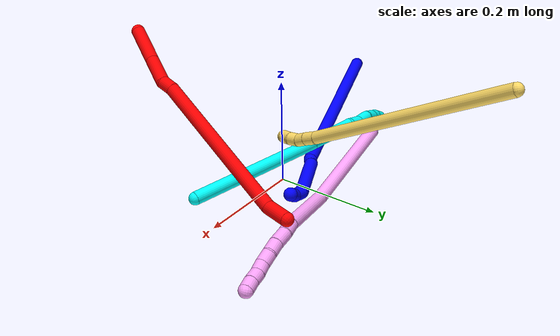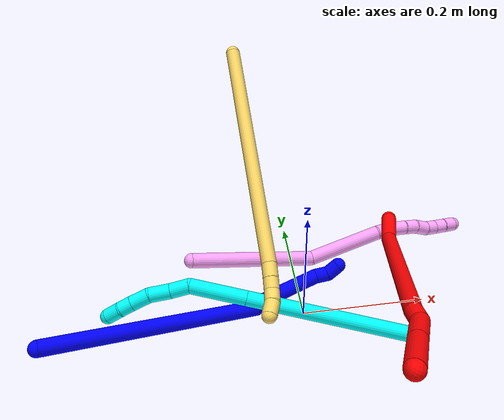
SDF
<sdf version="1.7">
 <world name="default">
  <plugin name="TubeGeneratorPlugin" filename="libtube_generator_plugin.so"/>
  <model name="photoneo_s_sensor">
   <static>1</static>
   <pose>0 0 2 1.57079 1.57079 3.14159</pose>
   <link name="link">
    <inertial><mass>0.1</mass></inertial>
    <sensor name="sensor" type="depth">
     <update_rate>30</update_rate>
     <camera>
      <horizontal_fov>1.22</horizontal_fov>
      <image><width>1920</width><height>1200</height><format>B8G8R8</format></image>
      <clip><near>0.1</near><far>4</far></clip>
      <depth_camera><output>points</output></depth_camera>
     </camera>
     <plugin name="camera_plugin" filename="libgazebo_ros_depth_camera.so">
      <baseline>0.2</baseline>
      <alwaysOn>1</alwaysOn>
      <updateRate>0.0</updateRate>
      <cameraName>camera_ir</cameraName>
      <imageTopicName>/camera/color/image_raw</imageTopicName>
      <cameraInfoTopicName>/camera/color/camera_info</cameraInfoTopicName>
      <depthImageTopicName>/camera/depth/image_raw</depthImageTopicName>
      <depthImageCameraInfoTopicName>/camera/depth/camera_info</depthImageCameraInfoTopicName>
      <pointCloudTopicName>/camera/depth/points</pointCloudTopicName>
      <frameName>fr_optical</frameName>
      <pointCloudCutoff>0.1</pointCloudCutoff>
      <pointCloudCutoffMax>2.0</pointCloudCutoffMax>
      <distortionK1>0</distortionK1>
      <distortionK2>0</distortionK2>
      <distortionK3>0</distortionK3>
      <distortionT1>0</distortionT1>
      <distortionT2>0</distortionT2>
      <CxPrime>0</CxPrime>
      <Cx>0</Cx>
      <Cy>0</Cy>
      <focalLength>0</focalLength>
      <hackBaseline>0</hackBaseline>
     </plugin>
    </sensor>
   </link>
  </model>
  <gravity>0 0 -9.8</gravity>
  <magnetic_field>6e-06 2.3e-05 -4.2e-05</magnetic_field>
  <atmosphere type="adiabatic"/>
  <physics name="default_physics" default="0" type="ode">
   <max_step_size>0.003</max_step_size>
   <real_time_factor>1</real_time_factor>
   <real_time_update_rate>1000</real_time_update_rate>
   <max_contacts>10000</max_contacts>
   <ode>
    <solver>
     <type>quick</type>
     <iters>100</iters>
     <sor>1.3</sor>
     <use_dynamic_moi_rescaling>0</use_dynamic_moi_rescaling>
    </solver>
    <constraints>
     <contact_max_correcting_vel>0</contact_max_correcting_vel>
     <contact_surface_layer>0.001</contact_surface_layer>
     <cfm>0</cfm>
     <erp>0.2</erp>
    </constraints>
   </ode>
  </physics>
  <scene><ambient>0.4 0.4 0.4 1</ambient><background>0.7 0.7 0.7 1</background><shadows>0</shadows></scene>
  <audio><device>default</device></audio>
  <spherical_coordinates>
   <surface_model>EARTH_WGS84</surface_model>
   <latitude_deg>0</latitude_deg>
   <longitude_deg>0</longitude_deg>
   <elevation>0</elevation>
   <heading_deg>0</heading_deg>
  </spherical_coordinates>
  <model name="bin">
   <static>1</static>
   <link name="bottom">
    <collision name="collision-bottom">
     <pose>0 0 -0.01 0 -0 0</pose>
     <geometry><box><size>0.8 0.6 0.02</size></box></geometry>
     <surface>
      <friction><ode><mu>100</mu><mu2>100</mu2></ode></friction>
      <contact><collide_bitmask>65535</collide_bitmask></contact>
     </surface>
    </collision>
   </link>
   <link name="west_wall">
    <collision name="collision-west_wall">
     <pose>-0.41 0 0.1 0 -0 0</pose>
     <geometry><box><size>0.02 0.6 0.2</size></box></geometry>
     <surface>
      <friction><ode><mu>100</mu><mu2>100</mu2></ode></friction>
      <contact><collide_bitmask>65535</collide_bitmask></contact>
     </surface>
    </collision>
   </link>
   <link name="east_wall">
    <collision name="collision-east_wall">
     <pose>0.41 0 0.1 0 -0 0</pose>
     <geometry><box><size>0.02 0.6 0.2</size></box></geometry>
     <surface>
      <friction><ode><mu>100</mu><mu2>100</mu2></ode></friction>
      <contact><collide_bitmask>65535</collide_bitmask></contact>
     </surface>
    </collision>
   </link>
   <link name="south_wall">
    <collision name="collision-south_wall">
     <pose>0 -0.31 0.1 0 -0 0</pose>
     <geometry><box><size>0.8 0.02 0.2</size></box></geometry>
     <surface>
      <friction><ode><mu>100</mu><mu2>100</mu2></ode></friction>
      <contact><collide_bitmask>65535</collide_bitmask></contact>
     </surface>
    </collision>
   </link>
   <link name="north_wall">
    <collision name="collision-north_wall">
     <pose>0 0.31 0.1 0 -0 0</pose>
     <geometry><box><size>0.8 0.02 0.2</size></box></geometry>
     <surface>
      <friction><ode><mu>100</mu><mu2>100</mu2></ode></friction>
      <contact><collide_bitmask>65535</collide_bitmask></contact>
     </surface>
    </collision>
   </link>
  </model>
  <model name="1">
   <static>0</static>
   <link name="1">
    <collision name="collision-cylinder-e_1_1_4">
     <pose>0.060373 0.074666 -0.136173 -2.64004 0.370773 -1.26389</pose>
     <geometry><cylinder><radius>0.0125</radius><length>0.333245</length></cylinder></geometry>
     <surface>
      <friction><ode><mu>1.16</mu><mu2>1.16</mu2><slip1>0</slip1><slip2>0</slip2></ode></friction>
      <contact><ode><kp>1e+06</kp><kd>1</kd><max_vel>0</max_vel><min_depth>0.001</min_depth></ode></contact>
     </surface>
    </collision>
    <visual name="visual-cylinder-e_1_1_4">
     <pose>0.060373 0.074666 -0.136173 -2.64004 0.370773 -1.26389</pose>
     <geometry><cylinder><radius>0.0125</radius><length>0.333245</length></cylinder></geometry>
     <material><ambient>0 0 1 1</ambient></material>
    </visual>
    <collision name="collision-cylinder-e_2_4_5">
     <pose>0.126347 0.149207 -0.281063 3.12721 0.571016 3.09261</pose>
     <geometry><cylinder><radius>0.0125</radius><length>0.020724</length></cylinder></geometry>
     <surface>
      <friction><ode><mu>1.16</mu><mu2>1.16</mu2><slip1>0</slip1><slip2>0</slip2></ode></friction>
      <contact><ode><kp>1e+06</kp><kd>1</kd><max_vel>0</max_vel><min_depth>0.001</min_depth></ode></contact>
     </surface>
    </collision>
    <visual name="visual-cylinder-e_2_4_5">
     <pose>0.126347 0.149207 -0.281063 3.12721 0.571016 3.09261</pose>
     <geometry><cylinder><radius>0.0125</radius><length>0.020724</length></cylinder></geometry>
     <material><ambient>0 0 1 1</ambient></material>
    </visual>
    <collision name="collision-cylinder-e_3_5_6">
     <pose>0.15266 0.16018 -0.334699 -2.89938 0.420902 -2.10586</pose>
     <geometry><cylinder><radius>0.0125</radius><length>0.101387</length></cylinder></geometry>
     <surface>
      <friction><ode><mu>1.16</mu><mu2>1.16</mu2><slip1>0</slip1><slip2>0</slip2></ode></friction>
      <contact><ode><kp>1e+06</kp><kd>1</kd><max_vel>0</max_vel><min_depth>0.001</min_depth></ode></contact>
     </surface>
    </collision>
    <visual name="visual-cylinder-e_3_5_6">
     <pose>0.15266 0.16018 -0.334699 -2.89938 0.420902 -2.10586</pose>
     <geometry><cylinder><radius>0.0125</radius><length>0.101387</length></cylinder></geometry>
     <material><ambient>0 0 1 1</ambient></material>
    </visual>
    <collision name="collision-cylinder-e_4_6_7">
     <pose>0.172417 0.17425 -0.390142 -2.86629 -0.087167 0.609989</pose>
     <geometry><cylinder><radius>0.0125</radius><length>0.021956</length></cylinder></geometry>
     <surface>
      <friction><ode><mu>1.16</mu><mu2>1.16</mu2><slip1>0</slip1><slip2>0</slip2></ode></friction>
      <contact><ode><kp>1e+06</kp><kd>1</kd><max_vel>0</max_vel><min_depth>0.001</min_depth></ode></contact>
     </surface>
    </collision>
    <visual name="visual-cylinder-e_4_6_7">
     <pose>0.172417 0.17425 -0.390142 -2.86629 -0.087167 0.609989</pose>
     <geometry><cylinder><radius>0.0125</radius><length>0.021956</length></cylinder></geometry>
     <material><ambient>0 0 1 1</ambient></material>
    </visual>
    <collision name="collision-cylinder-e_5_7_2">
     <pose>0.170711 0.174894 -0.411743 2.9343 -0.066253 -0.616838</pose>
     <geometry><cylinder><radius>0.0125</radius><length>0.022688</length></cylinder></geometry>
     <surface>
      <friction><ode><mu>1.16</mu><mu2>1.16</mu2><slip1>0</slip1><slip2>0</slip2></ode></friction>
      <contact><ode><kp>1e+06</kp><kd>1</kd><max_vel>0</max_vel><min_depth>0.001</min_depth></ode></contact>
     </surface>
    </collision>
    <visual name="visual-cylinder-e_5_7_2">
     <pose>0.170711 0.174894 -0.411743 2.9343 -0.066253 -0.616838</pose>
     <geometry><cylinder><radius>0.0125</radius><length>0.022688</length></cylinder></geometry>
     <material><ambient>0 0 1 1</ambient></material>
    </visual>
    <collision name="collision-sphere-2">
     <pose>0.16996 0.172564 -0.42282 0 -0 0</pose>
     <geometry><sphere><radius>0.0125</radius></sphere></geometry>
     <surface>
      <friction><ode><mu>1.16</mu><mu2>1.16</mu2><slip1>0</slip1><slip2>0</slip2></ode></friction>
      <contact><ode><kp>1e+06</kp><kd>1</kd><max_vel>0</max_vel><min_depth>0.001</min_depth></ode></contact>
     </surface>
    </collision>
    <visual name="visual-sphere-2">
     <pose>0.16996 0.172564 -0.42282 0 -0 0</pose>
     <geometry><sphere><radius>0.0125</radius></sphere></geometry>
     <material><ambient>0 0 1 1</ambient></material>
    </visual>
    <collision name="collision-sphere-7">
     <pose>0.171462 0.177223 -0.400666 0 -0 0</pose>
     <geometry><sphere><radius>0.0125</radius></sphere></geometry>
     <surface>
      <friction><ode><mu>1.16</mu><mu2>1.16</mu2><slip1>0</slip1><slip2>0</slip2></ode></friction>
      <contact><ode><kp>1e+06</kp><kd>1</kd><max_vel>0</max_vel><min_depth>0.001</min_depth></ode></contact>
     </surface>
    </collision>
    <visual name="visual-sphere-7">
     <pose>0.171462 0.177223 -0.400666 0 -0 0</pose>
     <geometry><sphere><radius>0.0125</radius></sphere></geometry>
     <material><ambient>0 0 1 1</ambient></material>
    </visual>
    <collision name="collision-sphere-6">
     <pose>0.173373 0.171277 -0.379617 0 -0 0</pose>
     <geometry><sphere><radius>0.0125</radius></sphere></geometry>
     <surface>
      <friction><ode><mu>1.16</mu><mu2>1.16</mu2><slip1>0</slip1><slip2>0</slip2></ode></friction>
      <contact><ode><kp>1e+06</kp><kd>1</kd><max_vel>0</max_vel><min_depth>0.001</min_depth></ode></contact>
     </surface>
    </collision>
    <visual name="visual-sphere-6">
     <pose>0.173373 0.171277 -0.379617 0 -0 0</pose>
     <geometry><sphere><radius>0.0125</radius></sphere></geometry>
     <material><ambient>0 0 1 1</ambient></material>
    </visual>
    <collision name="collision-sphere-5">
     <pose>0.131948 0.149082 -0.28978 0 -0 0</pose>
     <geometry><sphere><radius>0.0125</radius></sphere></geometry>
     <surface>
      <friction><ode><mu>1.16</mu><mu2>1.16</mu2><slip1>0</slip1><slip2>0</slip2></ode></friction>
      <contact><ode><kp>1e+06</kp><kd>1</kd><max_vel>0</max_vel><min_depth>0.001</min_depth></ode></contact>
     </surface>
    </collision>
    <visual name="visual-sphere-5">
     <pose>0.131948 0.149082 -0.28978 0 -0 0</pose>
     <geometry><sphere><radius>0.0125</radius></sphere></geometry>
     <material><ambient>0 0 1 1</ambient></material>
    </visual>
    <collision name="collision-sphere-1">
     <geometry><sphere><radius>0.0125</radius></sphere></geometry>
     <surface>
      <friction><ode><mu>1.16</mu><mu2>1.16</mu2><slip1>0</slip1><slip2>0</slip2></ode></friction>
      <contact><ode><kp>1e+06</kp><kd>1</kd><max_vel>0</max_vel><min_depth>0.001</min_depth></ode></contact>
     </surface>
    </collision>
    <visual name="visual-sphere-1">
     <geometry><sphere><radius>0.0125</radius></sphere></geometry>
     <material><ambient>0 0 1 1</ambient></material>
    </visual>
    <collision name="collision-sphere-4">
     <pose>0.120747 0.149332 -0.272346 0 -0 0</pose>
     <geometry><sphere><radius>0.0125</radius></sphere></geometry>
     <surface>
      <friction><ode><mu>1.16</mu><mu2>1.16</mu2><slip1>0</slip1><slip2>0</slip2></ode></friction>
      <contact><ode><kp>1e+06</kp><kd>1</kd><max_vel>0</max_vel><min_depth>0.001</min_depth></ode></contact>
     </surface>
    </collision>
    <visual name="visual-sphere-4">
     <pose>0.120747 0.149332 -0.272346 0 -0 0</pose>
     <geometry><sphere><radius>0.0125</radius></sphere></geometry>
     <material><ambient>0 0 1 1</ambient></material>
    </visual>
    <inertial>
     <pose>0.091748 0.104016 -0.206091 0 -0 0</pose>
     <mass>0.5</mass>
     <inertia>
      <ixx>-0.001978</ixx>
      <ixy>0</ixy>
      <ixz>0</ixz>
      <iyy>-0.003064</iyy>
      <iyz>0</iyz>
      <izz>-0.002601</izz>
     </inertia>
    </inertial>
   </link>
   <pose>-0.388503 -0.077881 0.084045 -2.01395 0.477632 1.54066</pose>
  </model>
  <model name="2">
   <static>0</static>
   <link name="2">
    <collision name="collision-cylinder-e_1_1_4">
     <pose>0.008078 0.023969 0.001861 -1.4933 0.324168 -0.300347</pose>
     <geometry><cylinder><radius>0.0125</radius><length>0.050723</length></cylinder></geometry>
     <surface>
      <friction><ode><mu>1.16</mu><mu2>1.16</mu2><slip1>0</slip1><slip2>0</slip2></ode></friction>
      <contact><ode><kp>1e+06</kp><kd>1</kd><max_vel>0</max_vel><min_depth>0.001</min_depth></ode></contact>
     </surface>
    </collision>
    <visual name="visual-cylinder-e_1_1_4">
     <pose>0.008078 0.023969 0.001861 -1.4933 0.324168 -0.300347</pose>
     <geometry><cylinder><radius>0.0125</radius><length>0.050723</length></cylinder></geometry>
     <material><ambient>1 0 0 1</ambient></material>
    </visual>
    <collision name="collision-cylinder-e_2_4_5">
     <pose>-0.00037 0.189446 0.041652 -1.30892 -0.112334 0.086227</pose>
     <geometry><cylinder><radius>0.0125</radius><length>0.294865</length></cylinder></geometry>
     <surface>
      <friction><ode><mu>1.16</mu><mu2>1.16</mu2><slip1>0</slip1><slip2>0</slip2></ode></friction>
      <contact><ode><kp>1e+06</kp><kd>1</kd><max_vel>0</max_vel><min_depth>0.001</min_depth></ode></contact>
     </surface>
    </collision>
    <visual name="visual-cylinder-e_2_4_5">
     <pose>-0.00037 0.189446 0.041652 -1.30892 -0.112334 0.086227</pose>
     <geometry><cylinder><radius>0.0125</radius><length>0.294865</length></cylinder></geometry>
     <material><ambient>1 0 0 1</ambient></material>
    </visual>
    <collision name="collision-cylinder-e_3_5_6">
     <pose>-0.018382 0.343144 0.080181 -1.52163 -0.121049 0.115253</pose>
     <geometry><cylinder><radius>0.0125</radius><length>0.024588</length></cylinder></geometry>
     <surface>
      <friction><ode><mu>1.16</mu><mu2>1.16</mu2><slip1>0</slip1><slip2>0</slip2></ode></friction>
      <contact><ode><kp>1e+06</kp><kd>1</kd><max_vel>0</max_vel><min_depth>0.001</min_depth></ode></contact>
     </surface>
    </collision>
    <visual name="visual-cylinder-e_3_5_6">
     <pose>-0.018382 0.343144 0.080181 -1.52163 -0.121049 0.115253</pose>
     <geometry><cylinder><radius>0.0125</radius><length>0.024588</length></cylinder></geometry>
     <material><ambient>1 0 0 1</ambient></material>
    </visual>
    <collision name="collision-cylinder-e_4_6_7">
     <pose>-0.021183 0.379879 0.092693 -1.11897 -0.048198 0.030187</pose>
     <geometry><cylinder><radius>0.0125</radius><length>0.054632</length></cylinder></geometry>
     <surface>
      <friction><ode><mu>1.16</mu><mu2>1.16</mu2><slip1>0</slip1><slip2>0</slip2></ode></friction>
      <contact><ode><kp>1e+06</kp><kd>1</kd><max_vel>0</max_vel><min_depth>0.001</min_depth></ode></contact>
     </surface>
    </collision>
    <visual name="visual-cylinder-e_4_6_7">
     <pose>-0.021183 0.379879 0.092693 -1.11897 -0.048198 0.030187</pose>
     <geometry><cylinder><radius>0.0125</radius><length>0.054632</length></cylinder></geometry>
     <material><ambient>1 0 0 1</ambient></material>
    </visual>
    <collision name="collision-cylinder-e_5_7_2">
     <pose>-0.024762 0.438153 0.12106 -1.1169 -0.060228 0.037637</pose>
     <geometry><cylinder><radius>0.0125</radius><length>0.075191</length></cylinder></geometry>
     <surface>
      <friction><ode><mu>1.16</mu><mu2>1.16</mu2><slip1>0</slip1><slip2>0</slip2></ode></friction>
      <contact><ode><kp>1e+06</kp><kd>1</kd><max_vel>0</max_vel><min_depth>0.001</min_depth></ode></contact>
     </surface>
    </collision>
    <visual name="visual-cylinder-e_5_7_2">
     <pose>-0.024762 0.438153 0.12106 -1.1169 -0.060228 0.037637</pose>
     <geometry><cylinder><radius>0.0125</radius><length>0.075191</length></cylinder></geometry>
     <material><ambient>1 0 0 1</ambient></material>
    </visual>
    <collision name="collision-sphere-2">
     <pose>-0.027024 0.471881 0.137515 0 -0 0</pose>
     <geometry><sphere><radius>0.0125</radius></sphere></geometry>
     <surface>
      <friction><ode><mu>1.16</mu><mu2>1.16</mu2><slip1>0</slip1><slip2>0</slip2></ode></friction>
      <contact><ode><kp>1e+06</kp><kd>1</kd><max_vel>0</max_vel><min_depth>0.001</min_depth></ode></contact>
     </surface>
    </collision>
    <visual name="visual-sphere-2">
     <pose>-0.027024 0.471881 0.137515 0 -0 0</pose>
     <geometry><sphere><radius>0.0125</radius></sphere></geometry>
     <material><ambient>1 0 0 1</ambient></material>
    </visual>
    <collision name="collision-sphere-7">
     <pose>-0.022499 0.404426 0.104605 0 -0 0</pose>
     <geometry><sphere><radius>0.0125</radius></sphere></geometry>
     <surface>
      <friction><ode><mu>1.16</mu><mu2>1.16</mu2><slip1>0</slip1><slip2>0</slip2></ode></friction>
      <contact><ode><kp>1e+06</kp><kd>1</kd><max_vel>0</max_vel><min_depth>0.001</min_depth></ode></contact>
     </surface>
    </collision>
    <visual name="visual-sphere-7">
     <pose>-0.022499 0.404426 0.104605 0 -0 0</pose>
     <geometry><sphere><radius>0.0125</radius></sphere></geometry>
     <material><ambient>1 0 0 1</ambient></material>
    </visual>
    <collision name="collision-sphere-6">
     <pose>-0.019866 0.355333 0.08078 0 -0 0</pose>
     <geometry><sphere><radius>0.0125</radius></sphere></geometry>
     <surface>
      <friction><ode><mu>1.16</mu><mu2>1.16</mu2><slip1>0</slip1><slip2>0</slip2></ode></friction>
      <contact><ode><kp>1e+06</kp><kd>1</kd><max_vel>0</max_vel><min_depth>0.001</min_depth></ode></contact>
     </surface>
    </collision>
    <visual name="visual-sphere-6">
     <pose>-0.019866 0.355333 0.08078 0 -0 0</pose>
     <geometry><sphere><radius>0.0125</radius></sphere></geometry>
     <material><ambient>1 0 0 1</ambient></material>
    </visual>
    <collision name="collision-sphere-5">
     <pose>-0.016897 0.330954 0.079581 0 -0 0</pose>
     <geometry><sphere><radius>0.0125</radius></sphere></geometry>
     <surface>
      <friction><ode><mu>1.16</mu><mu2>1.16</mu2><slip1>0</slip1><slip2>0</slip2></ode></friction>
      <contact><ode><kp>1e+06</kp><kd>1</kd><max_vel>0</max_vel><min_depth>0.001</min_depth></ode></contact>
     </surface>
    </collision>
    <visual name="visual-sphere-5">
     <pose>-0.016897 0.330954 0.079581 0 -0 0</pose>
     <geometry><sphere><radius>0.0125</radius></sphere></geometry>
     <material><ambient>1 0 0 1</ambient></material>
    </visual>
    <collision name="collision-sphere-1">
     <geometry><sphere><radius>0.0125</radius></sphere></geometry>
     <surface>
      <friction><ode><mu>1.16</mu><mu2>1.16</mu2><slip1>0</slip1><slip2>0</slip2></ode></friction>
      <contact><ode><kp>1e+06</kp><kd>1</kd><max_vel>0</max_vel><min_depth>0.001</min_depth></ode></contact>
     </surface>
    </collision>
    <visual name="visual-sphere-1">
     <geometry><sphere><radius>0.0125</radius></sphere></geometry>
     <material><ambient>1 0 0 1</ambient></material>
    </visual>
    <collision name="collision-sphere-4">
     <pose>0.016156 0.047937 0.003723 0 -0 0</pose>
     <geometry><sphere><radius>0.0125</radius></sphere></geometry>
     <surface>
      <friction><ode><mu>1.16</mu><mu2>1.16</mu2><slip1>0</slip1><slip2>0</slip2></ode></friction>
      <contact><ode><kp>1e+06</kp><kd>1</kd><max_vel>0</max_vel><min_depth>0.001</min_depth></ode></contact>
     </surface>
    </collision>
    <visual name="visual-sphere-4">
     <pose>0.016156 0.047937 0.003723 0 -0 0</pose>
     <geometry><sphere><radius>0.0125</radius></sphere></geometry>
     <material><ambient>1 0 0 1</ambient></material>
    </visual>
    <inertial>
     <pose>-0.006341 0.238426 0.057028 0 -0 0</pose>
     <mass>0.5</mass>
     <inertia>
      <ixx>0.002375</ixx>
      <ixy>0</ixy>
      <ixz>0</ixz>
      <iyy>0.000819</iyy>
      <iyz>0</iyz>
      <izz>-0.001874</izz>
     </inertia>
    </inertial>
   </link>
   <pose>0.178459 0.140511 0.060206 0.370838 0.978479 -2.88526</pose>
  </model>
  <model name="3">
   <static>0</static>
   <link name="3">
    <collision name="collision-cylinder-e_1_1_4">
     <pose>-0.120275 0.028045 0.048538 -0.523942 -1.13465 0.338442</pose>
     <geometry><cylinder><radius>0.0125</radius><length>0.265394</length></cylinder></geometry>
     <surface>
      <friction><ode><mu>1.16</mu><mu2>1.16</mu2><slip1>0</slip1><slip2>0</slip2></ode></friction>
      <contact><ode><kp>1e+06</kp><kd>1</kd><max_vel>0</max_vel><min_depth>0.001</min_depth></ode></contact>
     </surface>
    </collision>
    <visual name="visual-cylinder-e_1_1_4">
     <pose>-0.120275 0.028045 0.048538 -0.523942 -1.13465 0.338442</pose>
     <geometry><cylinder><radius>0.0125</radius><length>0.265394</length></cylinder></geometry>
     <material><ambient>0.003922 1 0.996078 1</ambient></material>
    </visual>
    <collision name="collision-cylinder-e_2_4_5">
     <pose>-0.282153 0.067041 0.114846 -0.552241 -1.10577 0.346211</pose>
     <geometry><cylinder><radius>0.0125</radius><length>0.093092</length></cylinder></geometry>
     <surface>
      <friction><ode><mu>1.16</mu><mu2>1.16</mu2><slip1>0</slip1><slip2>0</slip2></ode></friction>
      <contact><ode><kp>1e+06</kp><kd>1</kd><max_vel>0</max_vel><min_depth>0.001</min_depth></ode></contact>
     </surface>
    </collision>
    <visual name="visual-cylinder-e_2_4_5">
     <pose>-0.282153 0.067041 0.114846 -0.552241 -1.10577 0.346211</pose>
     <geometry><cylinder><radius>0.0125</radius><length>0.093092</length></cylinder></geometry>
     <material><ambient>0.003922 1 0.996078 1</ambient></material>
    </visual>
    <collision name="collision-cylinder-e_3_5_6">
     <pose>-0.335977 0.075724 0.142703 0.221082 -0.868649 -0.102881</pose>
     <geometry><cylinder><radius>0.0125</radius><length>0.032013</length></cylinder></geometry>
     <surface>
      <friction><ode><mu>1.16</mu><mu2>1.16</mu2><slip1>0</slip1><slip2>0</slip2></ode></friction>
      <contact><ode><kp>1e+06</kp><kd>1</kd><max_vel>0</max_vel><min_depth>0.001</min_depth></ode></contact>
     </surface>
    </collision>
    <visual name="visual-cylinder-e_3_5_6">
     <pose>-0.335977 0.075724 0.142703 0.221082 -0.868649 -0.102881</pose>
     <geometry><cylinder><radius>0.0125</radius><length>0.032013</length></cylinder></geometry>
     <material><ambient>0.003922 1 0.996078 1</ambient></material>
    </visual>
    <collision name="collision-cylinder-e_4_6_7">
     <pose>-0.360558 0.073928 0.164699 -0.039527 -0.803591 0.016797</pose>
     <geometry><cylinder><radius>0.0125</radius><length>0.034343</length></cylinder></geometry>
     <surface>
      <friction><ode><mu>1.16</mu><mu2>1.16</mu2><slip1>0</slip1><slip2>0</slip2></ode></friction>
      <contact><ode><kp>1e+06</kp><kd>1</kd><max_vel>0</max_vel><min_depth>0.001</min_depth></ode></contact>
     </surface>
    </collision>
    <visual name="visual-cylinder-e_4_6_7">
     <pose>-0.360558 0.073928 0.164699 -0.039527 -0.803591 0.016797</pose>
     <geometry><cylinder><radius>0.0125</radius><length>0.034343</length></cylinder></geometry>
     <material><ambient>0.003922 1 0.996078 1</ambient></material>
    </visual>
    <collision name="collision-cylinder-e_5_7_8">
     <pose>-0.382492 0.070594 0.187295 0.342133 -0.701004 -0.12615</pose>
     <geometry><cylinder><radius>0.0125</radius><length>0.029686</length></cylinder></geometry>
     <surface>
      <friction><ode><mu>1.16</mu><mu2>1.16</mu2><slip1>0</slip1><slip2>0</slip2></ode></friction>
      <contact><ode><kp>1e+06</kp><kd>1</kd><max_vel>0</max_vel><min_depth>0.001</min_depth></ode></contact>
     </surface>
    </collision>
    <visual name="visual-cylinder-e_5_7_8">
     <pose>-0.382492 0.070594 0.187295 0.342133 -0.701004 -0.12615</pose>
     <geometry><cylinder><radius>0.0125</radius><length>0.029686</length></cylinder></geometry>
     <material><ambient>0.003922 1 0.996078 1</ambient></material>
    </visual>
    <collision name="collision-cylinder-e_6_8_9">
     <pose>-0.398444 0.064067 0.205733 0.337548 -0.660089 -0.116614</pose>
     <geometry><cylinder><radius>0.0125</radius><length>0.020804</length></cylinder></geometry>
     <surface>
      <friction><ode><mu>1.16</mu><mu2>1.16</mu2><slip1>0</slip1><slip2>0</slip2></ode></friction>
      <contact><ode><kp>1e+06</kp><kd>1</kd><max_vel>0</max_vel><min_depth>0.001</min_depth></ode></contact>
     </surface>
    </collision>
    <visual name="visual-cylinder-e_6_8_9">
     <pose>-0.398444 0.064067 0.205733 0.337548 -0.660089 -0.116614</pose>
     <geometry><cylinder><radius>0.0125</radius><length>0.020804</length></cylinder></geometry>
     <material><ambient>0.003922 1 0.996078 1</ambient></material>
    </visual>
    <collision name="collision-cylinder-e_7_9_2">
     <pose>-0.413256 0.05621 0.220878 0.607245 -0.752891 -0.246446</pose>
     <geometry><cylinder><radius>0.0125</radius><length>0.024668</length></cylinder></geometry>
     <surface>
      <friction><ode><mu>1.16</mu><mu2>1.16</mu2><slip1>0</slip1><slip2>0</slip2></ode></friction>
      <contact><ode><kp>1e+06</kp><kd>1</kd><max_vel>0</max_vel><min_depth>0.001</min_depth></ode></contact>
     </surface>
    </collision>
    <visual name="visual-cylinder-e_7_9_2">
     <pose>-0.413256 0.05621 0.220878 0.607245 -0.752891 -0.246446</pose>
     <geometry><cylinder><radius>0.0125</radius><length>0.024668</length></cylinder></geometry>
     <material><ambient>0.003922 1 0.996078 1</ambient></material>
    </visual>
    <collision name="collision-sphere-2">
     <pose>-0.421689 0.051075 0.228269 0 -0 0</pose>
     <geometry><sphere><radius>0.0125</radius></sphere></geometry>
     <surface>
      <friction><ode><mu>1.16</mu><mu2>1.16</mu2><slip1>0</slip1><slip2>0</slip2></ode></friction>
      <contact><ode><kp>1e+06</kp><kd>1</kd><max_vel>0</max_vel><min_depth>0.001</min_depth></ode></contact>
     </surface>
    </collision>
    <visual name="visual-sphere-2">
     <pose>-0.421689 0.051075 0.228269 0 -0 0</pose>
     <geometry><sphere><radius>0.0125</radius></sphere></geometry>
     <material><ambient>0.003922 1 0.996078 1</ambient></material>
    </visual>
    <collision name="collision-sphere-9">
     <pose>-0.404823 0.061346 0.213486 0 -0 0</pose>
     <geometry><sphere><radius>0.0125</radius></sphere></geometry>
     <surface>
      <friction><ode><mu>1.16</mu><mu2>1.16</mu2><slip1>0</slip1><slip2>0</slip2></ode></friction>
      <contact><ode><kp>1e+06</kp><kd>1</kd><max_vel>0</max_vel><min_depth>0.001</min_depth></ode></contact>
     </surface>
    </collision>
    <visual name="visual-sphere-9">
     <pose>-0.404823 0.061346 0.213486 0 -0 0</pose>
     <geometry><sphere><radius>0.0125</radius></sphere></geometry>
     <material><ambient>0.003922 1 0.996078 1</ambient></material>
    </visual>
    <collision name="collision-sphere-4">
     <pose>-0.240549 0.056091 0.097075 0 -0 0</pose>
     <geometry><sphere><radius>0.0125</radius></sphere></geometry>
     <surface>
      <friction><ode><mu>1.16</mu><mu2>1.16</mu2><slip1>0</slip1><slip2>0</slip2></ode></friction>
      <contact><ode><kp>1e+06</kp><kd>1</kd><max_vel>0</max_vel><min_depth>0.001</min_depth></ode></contact>
     </surface>
    </collision>
    <visual name="visual-sphere-4">
     <pose>-0.240549 0.056091 0.097075 0 -0 0</pose>
     <geometry><sphere><radius>0.0125</radius></sphere></geometry>
     <material><ambient>0.003922 1 0.996078 1</ambient></material>
    </visual>
    <collision name="collision-sphere-1">
     <geometry><sphere><radius>0.0125</radius></sphere></geometry>
     <surface>
      <friction><ode><mu>1.16</mu><mu2>1.16</mu2><slip1>0</slip1><slip2>0</slip2></ode></friction>
      <contact><ode><kp>1e+06</kp><kd>1</kd><max_vel>0</max_vel><min_depth>0.001</min_depth></ode></contact>
     </surface>
    </collision>
    <visual name="visual-sphere-1">
     <geometry><sphere><radius>0.0125</radius></sphere></geometry>
     <material><ambient>0.003922 1 0.996078 1</ambient></material>
    </visual>
    <collision name="collision-sphere-8">
     <pose>-0.392066 0.066788 0.19798 0 -0 0</pose>
     <geometry><sphere><radius>0.0125</radius></sphere></geometry>
     <surface>
      <friction><ode><mu>1.16</mu><mu2>1.16</mu2><slip1>0</slip1><slip2>0</slip2></ode></friction>
      <contact><ode><kp>1e+06</kp><kd>1</kd><max_vel>0</max_vel><min_depth>0.001</min_depth></ode></contact>
     </surface>
    </collision>
    <visual name="visual-sphere-8">
     <pose>-0.392066 0.066788 0.19798 0 -0 0</pose>
     <geometry><sphere><radius>0.0125</radius></sphere></geometry>
     <material><ambient>0.003922 1 0.996078 1</ambient></material>
    </visual>
    <collision name="collision-sphere-5">
     <pose>-0.323756 0.077991 0.132616 0 -0 0</pose>
     <geometry><sphere><radius>0.0125</radius></sphere></geometry>
     <surface>
      <friction><ode><mu>1.16</mu><mu2>1.16</mu2><slip1>0</slip1><slip2>0</slip2></ode></friction>
      <contact><ode><kp>1e+06</kp><kd>1</kd><max_vel>0</max_vel><min_depth>0.001</min_depth></ode></contact>
     </surface>
    </collision>
    <visual name="visual-sphere-5">
     <pose>-0.323756 0.077991 0.132616 0 -0 0</pose>
     <geometry><sphere><radius>0.0125</radius></sphere></geometry>
     <material><ambient>0.003922 1 0.996078 1</ambient></material>
    </visual>
    <collision name="collision-sphere-6">
     <pose>-0.348197 0.073457 0.152789 0 -0 0</pose>
     <geometry><sphere><radius>0.0125</radius></sphere></geometry>
     <surface>
      <friction><ode><mu>1.16</mu><mu2>1.16</mu2><slip1>0</slip1><slip2>0</slip2></ode></friction>
      <contact><ode><kp>1e+06</kp><kd>1</kd><max_vel>0</max_vel><min_depth>0.001</min_depth></ode></contact>
     </surface>
    </collision>
    <visual name="visual-sphere-6">
     <pose>-0.348197 0.073457 0.152789 0 -0 0</pose>
     <geometry><sphere><radius>0.0125</radius></sphere></geometry>
     <material><ambient>0.003922 1 0.996078 1</ambient></material>
    </visual>
    <collision name="collision-sphere-7">
     <pose>-0.372919 0.074399 0.176609 0 -0 0</pose>
     <geometry><sphere><radius>0.0125</radius></sphere></geometry>
     <surface>
      <friction><ode><mu>1.16</mu><mu2>1.16</mu2><slip1>0</slip1><slip2>0</slip2></ode></friction>
      <contact><ode><kp>1e+06</kp><kd>1</kd><max_vel>0</max_vel><min_depth>0.001</min_depth></ode></contact>
     </surface>
    </collision>
    <visual name="visual-sphere-7">
     <pose>-0.372919 0.074399 0.176609 0 -0 0</pose>
     <geometry><sphere><radius>0.0125</radius></sphere></geometry>
     <material><ambient>0.003922 1 0.996078 1</ambient></material>
    </visual>
    <inertial>
     <pose>-0.222326 0.046924 0.098172 0 -0 0</pose>
     <mass>0.5</mass>
     <inertia>
      <ixx>0.000863</ixx>
      <ixy>0</ixy>
      <ixz>0</ixz>
      <iyy>0.001834</iyy>
      <iyz>0</iyz>
      <izz>0.001168</izz>
     </inertia>
    </inertial>
   </link>
   <pose>0.159025 -0.077576 0.011498 1.62958 -0.086557 -0.72268</pose>
  </model>
  <model name="4">
   <static>0</static>
   <link name="4">
    <collision name="collision-cylinder-e_1_1_4">
     <pose>0.087372 -0.021896 0.054566 0.381597 0.978469 0.204946</pose>
     <geometry><cylinder><radius>0.0125</radius><length>0.210625</length></cylinder></geometry>
     <surface>
      <friction><ode><mu>1.16</mu><mu2>1.16</mu2><slip1>0</slip1><slip2>0</slip2></ode></friction>
      <contact><ode><kp>1e+06</kp><kd>1</kd><max_vel>0</max_vel><min_depth>0.001</min_depth></ode></contact>
     </surface>
    </collision>
    <visual name="visual-cylinder-e_1_1_4">
     <pose>0.087372 -0.021896 0.054566 0.381597 0.978469 0.204946</pose>
     <geometry><cylinder><radius>0.0125</radius><length>0.210625</length></cylinder></geometry>
     <material><ambient>1 0.65098 0.996078 1</ambient></material>
    </visual>
    <collision name="collision-cylinder-e_2_4_5">
     <pose>0.227354 -0.032835 0.143831 -0.305848 0.965712 -0.161251</pose>
     <geometry><cylinder><radius>0.0125</radius><length>0.127935</length></cylinder></geometry>
     <surface>
      <friction><ode><mu>1.16</mu><mu2>1.16</mu2><slip1>0</slip1><slip2>0</slip2></ode></friction>
      <contact><ode><kp>1e+06</kp><kd>1</kd><max_vel>0</max_vel><min_depth>0.001</min_depth></ode></contact>
     </surface>
    </collision>
    <visual name="visual-cylinder-e_2_4_5">
     <pose>0.227354 -0.032835 0.143831 -0.305848 0.965712 -0.161251</pose>
     <geometry><cylinder><radius>0.0125</radius><length>0.127935</length></cylinder></geometry>
     <material><ambient>1 0.65098 0.996078 1</ambient></material>
    </visual>
    <collision name="collision-cylinder-e_3_5_6">
     <pose>0.292264 -0.021715 0.184403 -0.027928 1.12506 -0.017608</pose>
     <geometry><cylinder><radius>0.0125</radius><length>0.027262</length></cylinder></geometry>
     <surface>
      <friction><ode><mu>1.16</mu><mu2>1.16</mu2><slip1>0</slip1><slip2>0</slip2></ode></friction>
      <contact><ode><kp>1e+06</kp><kd>1</kd><max_vel>0</max_vel><min_depth>0.001</min_depth></ode></contact>
     </surface>
    </collision>
    <visual name="visual-cylinder-e_3_5_6">
     <pose>0.292264 -0.021715 0.184403 -0.027928 1.12506 -0.017608</pose>
     <geometry><cylinder><radius>0.0125</radius><length>0.027262</length></cylinder></geometry>
     <material><ambient>1 0.65098 0.996078 1</ambient></material>
    </visual>
    <collision name="collision-cylinder-e_4_6_7">
     <pose>0.31649 -0.02319 0.198077 0.207195 0.981715 0.111027</pose>
     <geometry><cylinder><radius>0.0125</radius><length>0.028689</length></cylinder></geometry>
     <surface>
      <friction><ode><mu>1.16</mu><mu2>1.16</mu2><slip1>0</slip1><slip2>0</slip2></ode></friction>
      <contact><ode><kp>1e+06</kp><kd>1</kd><max_vel>0</max_vel><min_depth>0.001</min_depth></ode></contact>
     </surface>
    </collision>
    <visual name="visual-cylinder-e_4_6_7">
     <pose>0.31649 -0.02319 0.198077 0.207195 0.981715 0.111027</pose>
     <geometry><cylinder><radius>0.0125</radius><length>0.028689</length></cylinder></geometry>
     <material><ambient>1 0.65098 0.996078 1</ambient></material>
    </visual>
    <collision name="collision-cylinder-e_5_7_8">
     <pose>0.338626 -0.026699 0.211099 0.343746 1.07309 0.20575</pose>
     <geometry><cylinder><radius>0.0125</radius><length>0.023238</length></cylinder></geometry>
     <surface>
      <friction><ode><mu>1.16</mu><mu2>1.16</mu2><slip1>0</slip1><slip2>0</slip2></ode></friction>
      <contact><ode><kp>1e+06</kp><kd>1</kd><max_vel>0</max_vel><min_depth>0.001</min_depth></ode></contact>
     </surface>
    </collision>
    <visual name="visual-cylinder-e_5_7_8">
     <pose>0.338626 -0.026699 0.211099 0.343746 1.07309 0.20575</pose>
     <geometry><cylinder><radius>0.0125</radius><length>0.023238</length></cylinder></geometry>
     <material><ambient>1 0.65098 0.996078 1</ambient></material>
    </visual>
    <collision name="collision-cylinder-e_6_8_9">
     <pose>0.357736 -0.032765 0.221339 0.696443 0.936987 0.363371</pose>
     <geometry><cylinder><radius>0.0125</radius><length>0.022093</length></cylinder></geometry>
     <surface>
      <friction><ode><mu>1.16</mu><mu2>1.16</mu2><slip1>0</slip1><slip2>0</slip2></ode></friction>
      <contact><ode><kp>1e+06</kp><kd>1</kd><max_vel>0</max_vel><min_depth>0.001</min_depth></ode></contact>
     </surface>
    </collision>
    <visual name="visual-cylinder-e_6_8_9">
     <pose>0.357736 -0.032765 0.221339 0.696443 0.936987 0.363371</pose>
     <geometry><cylinder><radius>0.0125</radius><length>0.022093</length></cylinder></geometry>
     <material><ambient>1 0.65098 0.996078 1</ambient></material>
    </visual>
    <collision name="collision-cylinder-e_7_9_10">
     <pose>0.375849 -0.038534 0.230063 0.401469 1.15888 0.264738</pose>
     <geometry><cylinder><radius>0.0125</radius><length>0.020107</length></cylinder></geometry>
     <surface>
      <friction><ode><mu>1.16</mu><mu2>1.16</mu2><slip1>0</slip1><slip2>0</slip2></ode></friction>
      <contact><ode><kp>1e+06</kp><kd>1</kd><max_vel>0</max_vel><min_depth>0.001</min_depth></ode></contact>
     </surface>
    </collision>
    <visual name="visual-cylinder-e_7_9_10">
     <pose>0.375849 -0.038534 0.230063 0.401469 1.15888 0.264738</pose>
     <geometry><cylinder><radius>0.0125</radius><length>0.020107</length></cylinder></geometry>
     <material><ambient>1 0.65098 0.996078 1</ambient></material>
    </visual>
    <collision name="collision-cylinder-e_8_10_11">
     <pose>0.393697 -0.040727 0.238796 0.122611 1.04022 0.070279</pose>
     <geometry><cylinder><radius>0.0125</radius><length>0.020024</length></cylinder></geometry>
     <surface>
      <friction><ode><mu>1.16</mu><mu2>1.16</mu2><slip1>0</slip1><slip2>0</slip2></ode></friction>
      <contact><ode><kp>1e+06</kp><kd>1</kd><max_vel>0</max_vel><min_depth>0.001</min_depth></ode></contact>
     </surface>
    </collision>
    <visual name="visual-cylinder-e_8_10_11">
     <pose>0.393697 -0.040727 0.238796 0.122611 1.04022 0.070279</pose>
     <geometry><cylinder><radius>0.0125</radius><length>0.020024</length></cylinder></geometry>
     <material><ambient>1 0.65098 0.996078 1</ambient></material>
    </visual>
    <collision name="collision-cylinder-e_9_11_2">
     <pose>0.411367 -0.042371 0.24802 0.23956 1.12487 0.151442</pose>
     <geometry><cylinder><radius>0.0125</radius><length>0.020028</length></cylinder></geometry>
     <surface>
      <friction><ode><mu>1.16</mu><mu2>1.16</mu2><slip1>0</slip1><slip2>0</slip2></ode></friction>
      <contact><ode><kp>1e+06</kp><kd>1</kd><max_vel>0</max_vel><min_depth>0.001</min_depth></ode></contact>
     </surface>
    </collision>
    <visual name="visual-cylinder-e_9_11_2">
     <pose>0.411367 -0.042371 0.24802 0.23956 1.12487 0.151442</pose>
     <geometry><cylinder><radius>0.0125</radius><length>0.020028</length></cylinder></geometry>
     <material><ambient>1 0.65098 0.996078 1</ambient></material>
    </visual>
    <collision name="collision-sphere-2">
     <pose>0.420402 -0.043396 0.252216 0 -0 0</pose>
     <geometry><sphere><radius>0.0125</radius></sphere></geometry>
     <surface>
      <friction><ode><mu>1.16</mu><mu2>1.16</mu2><slip1>0</slip1><slip2>0</slip2></ode></friction>
      <contact><ode><kp>1e+06</kp><kd>1</kd><max_vel>0</max_vel><min_depth>0.001</min_depth></ode></contact>
     </surface>
    </collision>
    <visual name="visual-sphere-2">
     <pose>0.420402 -0.043396 0.252216 0 -0 0</pose>
     <geometry><sphere><radius>0.0125</radius></sphere></geometry>
     <material><ambient>1 0.65098 0.996078 1</ambient></material>
    </visual>
    <collision name="collision-sphere-11">
     <pose>0.402333 -0.041347 0.243825 0 -0 0</pose>
     <geometry><sphere><radius>0.0125</radius></sphere></geometry>
     <surface>
      <friction><ode><mu>1.16</mu><mu2>1.16</mu2><slip1>0</slip1><slip2>0</slip2></ode></friction>
      <contact><ode><kp>1e+06</kp><kd>1</kd><max_vel>0</max_vel><min_depth>0.001</min_depth></ode></contact>
     </surface>
    </collision>
    <visual name="visual-sphere-11">
     <pose>0.402333 -0.041347 0.243825 0 -0 0</pose>
     <geometry><sphere><radius>0.0125</radius></sphere></geometry>
     <material><ambient>1 0.65098 0.996078 1</ambient></material>
    </visual>
    <collision name="collision-sphere-10">
     <pose>0.385062 -0.040107 0.233768 0 -0 0</pose>
     <geometry><sphere><radius>0.0125</radius></sphere></geometry>
     <surface>
      <friction><ode><mu>1.16</mu><mu2>1.16</mu2><slip1>0</slip1><slip2>0</slip2></ode></friction>
      <contact><ode><kp>1e+06</kp><kd>1</kd><max_vel>0</max_vel><min_depth>0.001</min_depth></ode></contact>
     </surface>
    </collision>
    <visual name="visual-sphere-10">
     <pose>0.385062 -0.040107 0.233768 0 -0 0</pose>
     <geometry><sphere><radius>0.0125</radius></sphere></geometry>
     <material><ambient>1 0.65098 0.996078 1</ambient></material>
    </visual>
    <collision name="collision-sphere-9">
     <pose>0.366637 -0.036962 0.226358 0 -0 0</pose>
     <geometry><sphere><radius>0.0125</radius></sphere></geometry>
     <surface>
      <friction><ode><mu>1.16</mu><mu2>1.16</mu2><slip1>0</slip1><slip2>0</slip2></ode></friction>
      <contact><ode><kp>1e+06</kp><kd>1</kd><max_vel>0</max_vel><min_depth>0.001</min_depth></ode></contact>
     </surface>
    </collision>
    <visual name="visual-sphere-9">
     <pose>0.366637 -0.036962 0.226358 0 -0 0</pose>
     <geometry><sphere><radius>0.0125</radius></sphere></geometry>
     <material><ambient>1 0.65098 0.996078 1</ambient></material>
    </visual>
    <collision name="collision-sphere-4">
     <pose>0.174744 -0.043791 0.109132 0 -0 0</pose>
     <geometry><sphere><radius>0.0125</radius></sphere></geometry>
     <surface>
      <friction><ode><mu>1.16</mu><mu2>1.16</mu2><slip1>0</slip1><slip2>0</slip2></ode></friction>
      <contact><ode><kp>1e+06</kp><kd>1</kd><max_vel>0</max_vel><min_depth>0.001</min_depth></ode></contact>
     </surface>
    </collision>
    <visual name="visual-sphere-4">
     <pose>0.174744 -0.043791 0.109132 0 -0 0</pose>
     <geometry><sphere><radius>0.0125</radius></sphere></geometry>
     <material><ambient>1 0.65098 0.996078 1</ambient></material>
    </visual>
    <collision name="collision-sphere-1">
     <geometry><sphere><radius>0.0125</radius></sphere></geometry>
     <surface>
      <friction><ode><mu>1.16</mu><mu2>1.16</mu2><slip1>0</slip1><slip2>0</slip2></ode></friction>
      <contact><ode><kp>1e+06</kp><kd>1</kd><max_vel>0</max_vel><min_depth>0.001</min_depth></ode></contact>
     </surface>
    </collision>
    <visual name="visual-sphere-1">
     <geometry><sphere><radius>0.0125</radius></sphere></geometry>
     <material><ambient>1 0.65098 0.996078 1</ambient></material>
    </visual>
    <collision name="collision-sphere-8">
     <pose>0.348835 -0.028568 0.216321 0 -0 0</pose>
     <geometry><sphere><radius>0.0125</radius></sphere></geometry>
     <surface>
      <friction><ode><mu>1.16</mu><mu2>1.16</mu2><slip1>0</slip1><slip2>0</slip2></ode></friction>
      <contact><ode><kp>1e+06</kp><kd>1</kd><max_vel>0</max_vel><min_depth>0.001</min_depth></ode></contact>
     </surface>
    </collision>
    <visual name="visual-sphere-8">
     <pose>0.348835 -0.028568 0.216321 0 -0 0</pose>
     <geometry><sphere><radius>0.0125</radius></sphere></geometry>
     <material><ambient>1 0.65098 0.996078 1</ambient></material>
    </visual>
    <collision name="collision-sphere-5">
     <pose>0.279965 -0.021879 0.178529 0 -0 0</pose>
     <geometry><sphere><radius>0.0125</radius></sphere></geometry>
     <surface>
      <friction><ode><mu>1.16</mu><mu2>1.16</mu2><slip1>0</slip1><slip2>0</slip2></ode></friction>
      <contact><ode><kp>1e+06</kp><kd>1</kd><max_vel>0</max_vel><min_depth>0.001</min_depth></ode></contact>
     </surface>
    </collision>
    <visual name="visual-sphere-5">
     <pose>0.279965 -0.021879 0.178529 0 -0 0</pose>
     <geometry><sphere><radius>0.0125</radius></sphere></geometry>
     <material><ambient>1 0.65098 0.996078 1</ambient></material>
    </visual>
    <collision name="collision-sphere-6">
     <pose>0.304563 -0.021551 0.190278 0 -0 0</pose>
     <geometry><sphere><radius>0.0125</radius></sphere></geometry>
     <surface>
      <friction><ode><mu>1.16</mu><mu2>1.16</mu2><slip1>0</slip1><slip2>0</slip2></ode></friction>
      <contact><ode><kp>1e+06</kp><kd>1</kd><max_vel>0</max_vel><min_depth>0.001</min_depth></ode></contact>
     </surface>
    </collision>
    <visual name="visual-sphere-6">
     <pose>0.304563 -0.021551 0.190278 0 -0 0</pose>
     <geometry><sphere><radius>0.0125</radius></sphere></geometry>
     <material><ambient>1 0.65098 0.996078 1</ambient></material>
    </visual>
    <collision name="collision-sphere-7">
     <pose>0.328417 -0.02483 0.205876 0 -0 0</pose>
     <geometry><sphere><radius>0.0125</radius></sphere></geometry>
     <surface>
      <friction><ode><mu>1.16</mu><mu2>1.16</mu2><slip1>0</slip1><slip2>0</slip2></ode></friction>
      <contact><ode><kp>1e+06</kp><kd>1</kd><max_vel>0</max_vel><min_depth>0.001</min_depth></ode></contact>
     </surface>
    </collision>
    <visual name="visual-sphere-7">
     <pose>0.328417 -0.02483 0.205876 0 -0 0</pose>
     <geometry><sphere><radius>0.0125</radius></sphere></geometry>
     <material><ambient>1 0.65098 0.996078 1</ambient></material>
    </visual>
    <inertial>
     <pose>0.207976 -0.027706 0.129548 0 -0 0</pose>
     <mass>0.5</mass>
     <inertia>
      <ixx>0.000644</ixx>
      <ixy>0</ixy>
      <ixz>0</ixz>
      <iyy>0.001025</iyy>
      <iyz>0</iyz>
      <izz>-0.000658</izz>
     </inertia>
    </inertial>
   </link>
   <pose>-0.172625 0.091033 0.055508 1.25392 0.191323 0.685825</pose>
  </model>
  <model name="5">
   <static>0</static>
   <link name="5">
    <collision name="collision-cylinder-e_1_1_4">
     <pose>0.052712 -0.017465 -0.198248 3.05372 0.258918 2.49024</pose>
     <geometry><cylinder><radius>0.0125</radius><length>0.411756</length></cylinder></geometry>
     <surface>
      <friction><ode><mu>1.16</mu><mu2>1.16</mu2><slip1>0</slip1><slip2>0</slip2></ode></friction>
      <contact><ode><kp>1e+06</kp><kd>1</kd><max_vel>0</max_vel><min_depth>0.001</min_depth></ode></contact>
     </surface>
    </collision>
    <visual name="visual-cylinder-e_1_1_4">
     <pose>0.052712 -0.017465 -0.198248 3.05372 0.258918 2.49024</pose>
     <geometry><cylinder><radius>0.0125</radius><length>0.411756</length></cylinder></geometry>
     <material><ambient>1 0.858824 0.4 1</ambient></material>
    </visual>
    <collision name="collision-cylinder-e_2_4_5">
     <pose>0.109126 -0.034912 -0.408136 -3.13998 0.307946 -3.13122</pose>
     <geometry><cylinder><radius>0.0125</radius><length>0.024431</length></cylinder></geometry>
     <surface>
      <friction><ode><mu>1.16</mu><mu2>1.16</mu2><slip1>0</slip1><slip2>0</slip2></ode></friction>
      <contact><ode><kp>1e+06</kp><kd>1</kd><max_vel>0</max_vel><min_depth>0.001</min_depth></ode></contact>
     </surface>
    </collision>
    <visual name="visual-cylinder-e_2_4_5">
     <pose>0.109126 -0.034912 -0.408136 -3.13998 0.307946 -3.13122</pose>
     <geometry><cylinder><radius>0.0125</radius><length>0.024431</length></cylinder></geometry>
     <material><ambient>1 0.858824 0.4 1</ambient></material>
    </visual>
    <collision name="collision-cylinder-e_3_5_6">
     <pose>0.116101 -0.035336 -0.429246 3.09492 0.332385 2.86506</pose>
     <geometry><cylinder><radius>0.0125</radius><length>0.020056</length></cylinder></geometry>
     <surface>
      <friction><ode><mu>1.16</mu><mu2>1.16</mu2><slip1>0</slip1><slip2>0</slip2></ode></friction>
      <contact><ode><kp>1e+06</kp><kd>1</kd><max_vel>0</max_vel><min_depth>0.001</min_depth></ode></contact>
     </surface>
    </collision>
    <visual name="visual-cylinder-e_3_5_6">
     <pose>0.116101 -0.035336 -0.429246 3.09492 0.332385 2.86506</pose>
     <geometry><cylinder><radius>0.0125</radius><length>0.020056</length></cylinder></geometry>
     <material><ambient>1 0.858824 0.4 1</ambient></material>
    </visual>
    <collision name="collision-cylinder-e_4_6_7">
     <pose>0.122782 -0.03345 -0.447991 -2.89575 0.342418 -1.90078</pose>
     <geometry><cylinder><radius>0.0125</radius><length>0.020306</length></cylinder></geometry>
     <surface>
      <friction><ode><mu>1.16</mu><mu2>1.16</mu2><slip1>0</slip1><slip2>0</slip2></ode></friction>
      <contact><ode><kp>1e+06</kp><kd>1</kd><max_vel>0</max_vel><min_depth>0.001</min_depth></ode></contact>
     </surface>
    </collision>
    <visual name="visual-cylinder-e_4_6_7">
     <pose>0.122782 -0.03345 -0.447991 -2.89575 0.342418 -1.90078</pose>
     <geometry><cylinder><radius>0.0125</radius><length>0.020306</length></cylinder></geometry>
     <material><ambient>1 0.858824 0.4 1</ambient></material>
    </visual>
    <collision name="collision-cylinder-e_5_7_2">
     <pose>0.132711 -0.028767 -0.466724 -2.89746 0.589598 -2.37368</pose>
     <geometry><cylinder><radius>0.0125</radius><length>0.023451</length></cylinder></geometry>
     <surface>
      <friction><ode><mu>1.16</mu><mu2>1.16</mu2><slip1>0</slip1><slip2>0</slip2></ode></friction>
      <contact><ode><kp>1e+06</kp><kd>1</kd><max_vel>0</max_vel><min_depth>0.001</min_depth></ode></contact>
     </surface>
    </collision>
    <visual name="visual-cylinder-e_5_7_2">
     <pose>0.132711 -0.028767 -0.466724 -2.89746 0.589598 -2.37368</pose>
     <geometry><cylinder><radius>0.0125</radius><length>0.023451</length></cylinder></geometry>
     <material><ambient>1 0.858824 0.4 1</ambient></material>
    </visual>
    <collision name="collision-sphere-2">
     <pose>0.139231 -0.026412 -0.476181 0 -0 0</pose>
     <geometry><sphere><radius>0.0125</radius></sphere></geometry>
     <surface>
      <friction><ode><mu>1.16</mu><mu2>1.16</mu2><slip1>0</slip1><slip2>0</slip2></ode></friction>
      <contact><ode><kp>1e+06</kp><kd>1</kd><max_vel>0</max_vel><min_depth>0.001</min_depth></ode></contact>
     </surface>
    </collision>
    <visual name="visual-sphere-2">
     <pose>0.139231 -0.026412 -0.476181 0 -0 0</pose>
     <geometry><sphere><radius>0.0125</radius></sphere></geometry>
     <material><ambient>1 0.858824 0.4 1</ambient></material>
    </visual>
    <collision name="collision-sphere-7">
     <pose>0.126191 -0.031123 -0.457267 0 -0 0</pose>
     <geometry><sphere><radius>0.0125</radius></sphere></geometry>
     <surface>
      <friction><ode><mu>1.16</mu><mu2>1.16</mu2><slip1>0</slip1><slip2>0</slip2></ode></friction>
      <contact><ode><kp>1e+06</kp><kd>1</kd><max_vel>0</max_vel><min_depth>0.001</min_depth></ode></contact>
     </surface>
    </collision>
    <visual name="visual-sphere-7">
     <pose>0.126191 -0.031123 -0.457267 0 -0 0</pose>
     <geometry><sphere><radius>0.0125</radius></sphere></geometry>
     <material><ambient>1 0.858824 0.4 1</ambient></material>
    </visual>
    <collision name="collision-sphere-6">
     <pose>0.119373 -0.035778 -0.438715 0 -0 0</pose>
     <geometry><sphere><radius>0.0125</radius></sphere></geometry>
     <surface>
      <friction><ode><mu>1.16</mu><mu2>1.16</mu2><slip1>0</slip1><slip2>0</slip2></ode></friction>
      <contact><ode><kp>1e+06</kp><kd>1</kd><max_vel>0</max_vel><min_depth>0.001</min_depth></ode></contact>
     </surface>
    </collision>
    <visual name="visual-sphere-6">
     <pose>0.119373 -0.035778 -0.438715 0 -0 0</pose>
     <geometry><sphere><radius>0.0125</radius></sphere></geometry>
     <material><ambient>1 0.858824 0.4 1</ambient></material>
    </visual>
    <collision name="collision-sphere-5">
     <pose>0.112829 -0.034893 -0.419777 0 -0 0</pose>
     <geometry><sphere><radius>0.0125</radius></sphere></geometry>
     <surface>
      <friction><ode><mu>1.16</mu><mu2>1.16</mu2><slip1>0</slip1><slip2>0</slip2></ode></friction>
      <contact><ode><kp>1e+06</kp><kd>1</kd><max_vel>0</max_vel><min_depth>0.001</min_depth></ode></contact>
     </surface>
    </collision>
    <visual name="visual-sphere-5">
     <pose>0.112829 -0.034893 -0.419777 0 -0 0</pose>
     <geometry><sphere><radius>0.0125</radius></sphere></geometry>
     <material><ambient>1 0.858824 0.4 1</ambient></material>
    </visual>
    <collision name="collision-sphere-1">
     <geometry><sphere><radius>0.0125</radius></sphere></geometry>
     <surface>
      <friction><ode><mu>1.16</mu><mu2>1.16</mu2><slip1>0</slip1><slip2>0</slip2></ode></friction>
      <contact><ode><kp>1e+06</kp><kd>1</kd><max_vel>0</max_vel><min_depth>0.001</min_depth></ode></contact>
     </surface>
    </collision>
    <visual name="visual-sphere-1">
     <geometry><sphere><radius>0.0125</radius></sphere></geometry>
     <material><ambient>1 0.858824 0.4 1</ambient></material>
    </visual>
    <collision name="collision-sphere-4">
     <pose>0.105424 -0.034931 -0.396495 0 -0 0</pose>
     <geometry><sphere><radius>0.0125</radius></sphere></geometry>
     <surface>
      <friction><ode><mu>1.16</mu><mu2>1.16</mu2><slip1>0</slip1><slip2>0</slip2></ode></friction>
      <contact><ode><kp>1e+06</kp><kd>1</kd><max_vel>0</max_vel><min_depth>0.001</min_depth></ode></contact>
     </surface>
    </collision>
    <visual name="visual-sphere-4">
     <pose>0.105424 -0.034931 -0.396495 0 -0 0</pose>
     <geometry><sphere><radius>0.0125</radius></sphere></geometry>
     <material><ambient>1 0.858824 0.4 1</ambient></material>
    </visual>
    <inertial>
     <pose>0.064609 -0.020214 -0.240504 0 -0 0</pose>
     <mass>0.5</mass>
     <inertia>
      <ixx>-0.001062</ixx>
      <ixy>0</ixy>
      <ixz>0</ixz>
      <iyy>0.008121</iyy>
      <iyz>0</iyz>
      <izz>-0.001039</izz>
     </inertia>
    </inertial>
   </link>
   <pose>-0.065181 0.406335 0.269207 1.21737 0.227639 -2.92403</pose>
  </model>
 </world>
</sdf>
